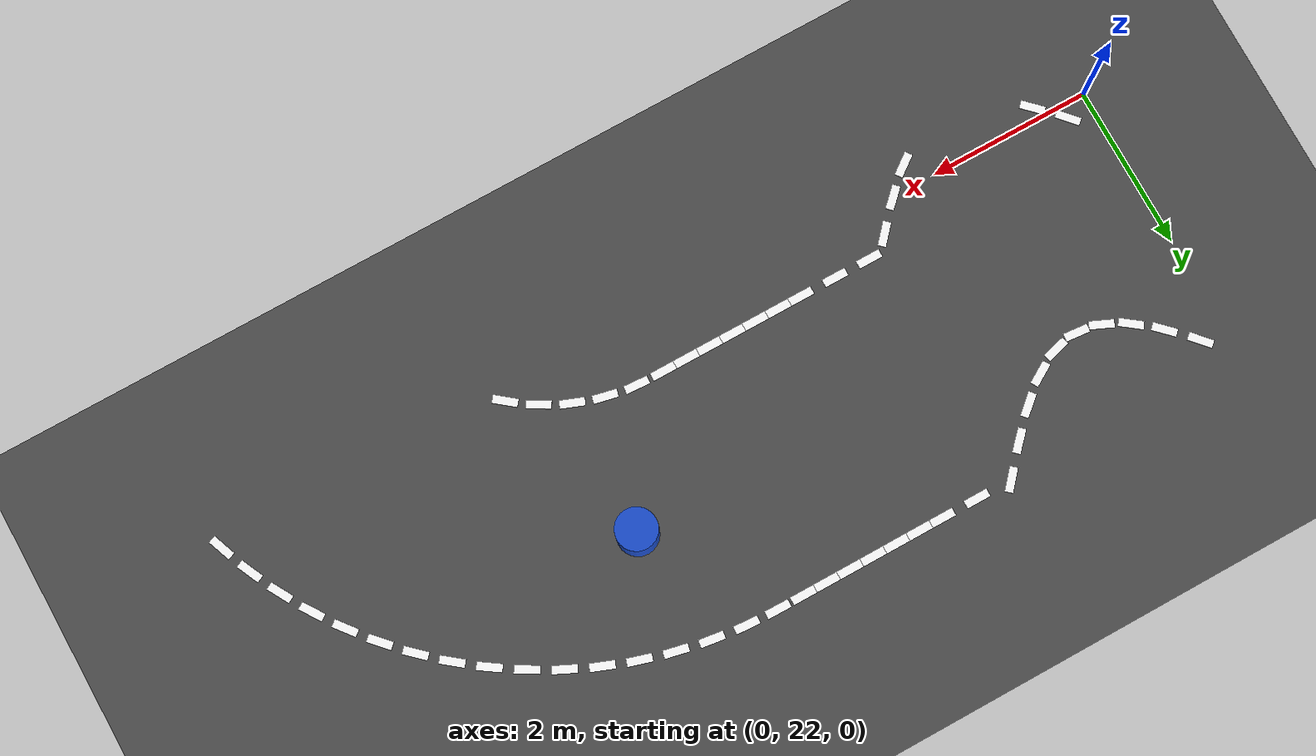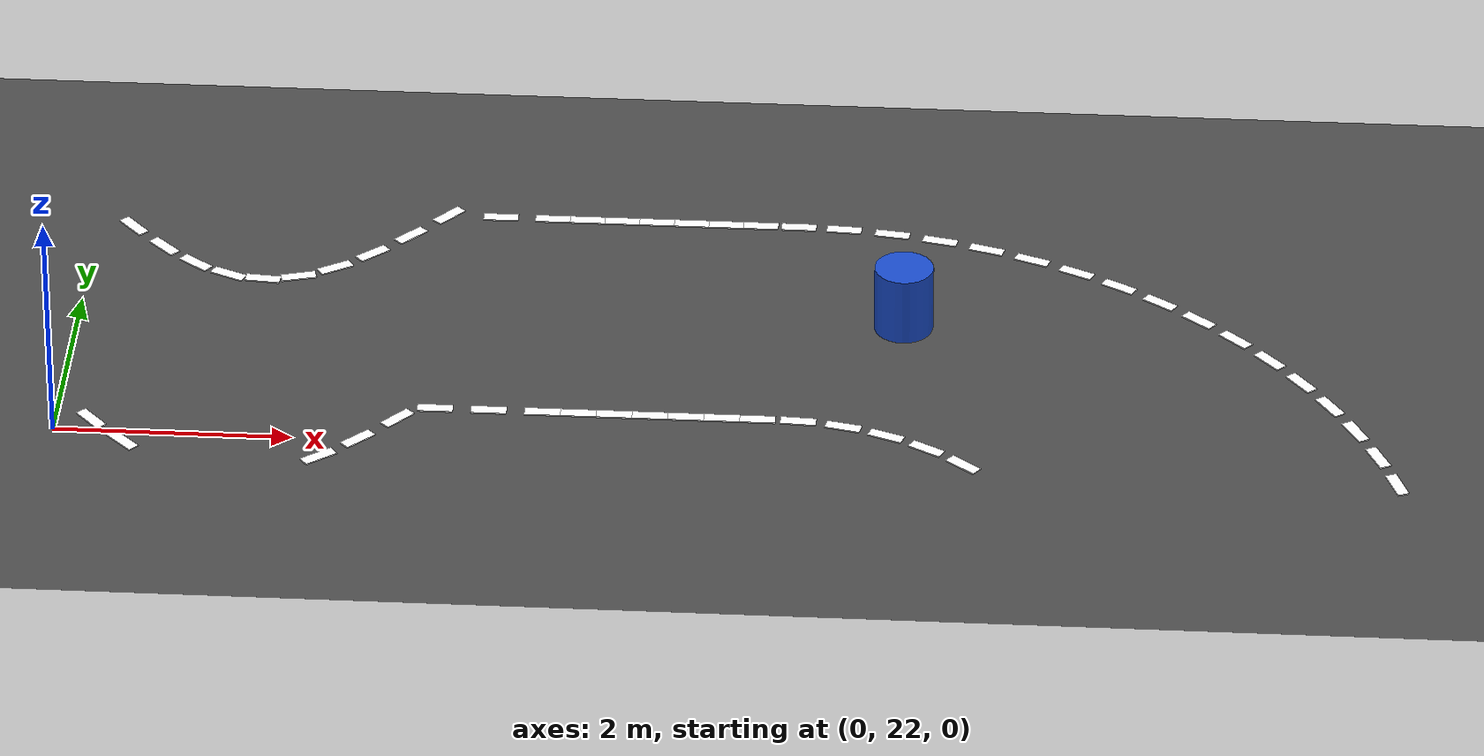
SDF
<sdf version="1.8">
 <world name="igvc_autonav">
  <model name="ground_plane">
   <static>true</static>
   <link name="link">
    <collision name="collision">
     <geometry><plane><normal>0 0 1</normal><size>60 60</size></plane></geometry>
     <surface><friction><ode><mu>0.8</mu><mu2>0.8</mu2></ode></friction></surface>
    </collision>
    <visual name="visual">
     <geometry><plane><normal>0 0 1</normal><size>60 60</size></plane></geometry>
     <material>
      <ambient>0.25 0.25 0.25 1</ambient>
      <diffuse>0.3 0.3 0.3 1</diffuse>
      <specular>0.1 0.1 0.1 1</specular>
     </material>
    </visual>
   </link>
  </model>
  <model name="lane_inner_79">
   <static>true</static>
   <pose>7.5906 21.9287 0.01 0 0 2.4711</pose>
   <link name="link">
    <visual name="visual">
     <geometry><box><size>0.3 0.1 0.01</size></box></geometry>
     <material><ambient>1 1 1 1</ambient><diffuse>1 1 1 1</diffuse><emissive>1 1 1 1</emissive></material>
    </visual>
   </link>
  </model>
  <model name="lane_inner_80">
   <static>true</static>
   <pose>7.2775 22.1489 0.01 0 0 2.6244</pose>
   <link name="link">
    <visual name="visual">
     <geometry><box><size>0.3 0.1 0.01</size></box></geometry>
     <material><ambient>1 1 1 1</ambient><diffuse>1 1 1 1</diffuse><emissive>1 1 1 1</emissive></material>
    </visual>
   </link>
  </model>
  <model name="lane_inner_81">
   <static>true</static>
   <pose>6.9345 22.3188 0.01 0 0 2.7776</pose>
   <link name="link">
    <visual name="visual">
     <geometry><box><size>0.3 0.1 0.01</size></box></geometry>
     <material><ambient>1 1 1 1</ambient><diffuse>1 1 1 1</diffuse><emissive>1 1 1 1</emissive></material>
    </visual>
   </link>
  </model>
  <model name="lane_inner_82">
   <static>true</static>
   <pose>6.5696 22.4342 0.01 0 0 2.9309</pose>
   <link name="link">
    <visual name="visual">
     <geometry><box><size>0.3 0.1 0.01</size></box></geometry>
     <material><ambient>1 1 1 1</ambient><diffuse>1 1 1 1</diffuse><emissive>1 1 1 1</emissive></material>
    </visual>
   </link>
  </model>
  <model name="lane_inner_83">
   <static>true</static>
   <pose>6.1914 22.4927 0.01 0 0 3.0841</pose>
   <link name="link">
    <visual name="visual">
     <geometry><box><size>0.3 0.1 0.01</size></box></geometry>
     <material><ambient>1 1 1 1</ambient><diffuse>1 1 1 1</diffuse><emissive>1 1 1 1</emissive></material>
    </visual>
   </link>
  </model>
  <model name="lane_inner_84">
   <static>true</static>
   <pose>5.8500 22.5000 0.01 0 0 3.1416</pose>
   <link name="link">
    <visual name="visual">
     <geometry><box><size>0.3 0.1 0.01</size></box></geometry>
     <material><ambient>1 1 1 1</ambient><diffuse>1 1 1 1</diffuse><emissive>1 1 1 1</emissive></material>
    </visual>
   </link>
  </model>
  <model name="lane_inner_85">
   <static>true</static>
   <pose>5.5500 22.5000 0.01 0 0 3.1416</pose>
   <link name="link">
    <visual name="visual">
     <geometry><box><size>0.3 0.1 0.01</size></box></geometry>
     <material><ambient>1 1 1 1</ambient><diffuse>1 1 1 1</diffuse><emissive>1 1 1 1</emissive></material>
    </visual>
   </link>
  </model>
  <model name="lane_inner_86">
   <static>true</static>
   <pose>5.2500 22.5000 0.01 0 0 3.1416</pose>
   <link name="link">
    <visual name="visual">
     <geometry><box><size>0.3 0.1 0.01</size></box></geometry>
     <material><ambient>1 1 1 1</ambient><diffuse>1 1 1 1</diffuse><emissive>1 1 1 1</emissive></material>
    </visual>
   </link>
  </model>
  <model name="lane_inner_87">
   <static>true</static>
   <pose>4.9500 22.5000 0.01 0 0 3.1416</pose>
   <link name="link">
    <visual name="visual">
     <geometry><box><size>0.3 0.1 0.01</size></box></geometry>
     <material><ambient>1 1 1 1</ambient><diffuse>1 1 1 1</diffuse><emissive>1 1 1 1</emissive></material>
    </visual>
   </link>
  </model>
  <model name="lane_inner_88">
   <static>true</static>
   <pose>4.6500 22.5000 0.01 0 0 3.1416</pose>
   <link name="link">
    <visual name="visual">
     <geometry><box><size>0.3 0.1 0.01</size></box></geometry>
     <material><ambient>1 1 1 1</ambient><diffuse>1 1 1 1</diffuse><emissive>1 1 1 1</emissive></material>
    </visual>
   </link>
  </model>
  <model name="lane_inner_89">
   <static>true</static>
   <pose>4.3500 22.5000 0.01 0 0 3.1416</pose>
   <link name="link">
    <visual name="visual">
     <geometry><box><size>0.3 0.1 0.01</size></box></geometry>
     <material><ambient>1 1 1 1</ambient><diffuse>1 1 1 1</diffuse><emissive>1 1 1 1</emissive></material>
    </visual>
   </link>
  </model>
  <model name="lane_inner_90">
   <static>true</static>
   <pose>4.0500 22.5000 0.01 0 0 3.1416</pose>
   <link name="link">
    <visual name="visual">
     <geometry><box><size>0.3 0.1 0.01</size></box></geometry>
     <material><ambient>1 1 1 1</ambient><diffuse>1 1 1 1</diffuse><emissive>1 1 1 1</emissive></material>
    </visual>
   </link>
  </model>
  <model name="lane_inner_91">
   <static>true</static>
   <pose>3.6000 22.5000 0.01 0 0 3.1416</pose>
   <link name="link">
    <visual name="visual">
     <geometry><box><size>0.3 0.1 0.01</size></box></geometry>
     <material><ambient>1 1 1 1</ambient><diffuse>1 1 1 1</diffuse><emissive>1 1 1 1</emissive></material>
    </visual>
   </link>
  </model>
  <model name="lane_inner_92">
   <static>true</static>
   <pose>3.1500 22.5000 0.01 0 0 -3.1416</pose>
   <link name="link">
    <visual name="visual">
     <geometry><box><size>0.3 0.1 0.01</size></box></geometry>
     <material><ambient>1 1 1 1</ambient><diffuse>1 1 1 1</diffuse><emissive>1 1 1 1</emissive></material>
    </visual>
   </link>
  </model>
  <model name="lane_inner_93">
   <static>true</static>
   <pose>2.8500 22.3279 0.01 0 0 -2.3001</pose>
   <link name="link">
    <visual name="visual">
     <geometry><box><size>0.3 0.1 0.01</size></box></geometry>
     <material><ambient>1 1 1 1</ambient><diffuse>1 1 1 1</diffuse><emissive>1 1 1 1</emissive></material>
    </visual>
   </link>
  </model>
  <model name="lane_inner_94">
   <static>true</static>
   <pose>2.5500 22.0006 0.01 0 0 -2.3657</pose>
   <link name="link">
    <visual name="visual">
     <geometry><box><size>0.3 0.1 0.01</size></box></geometry>
     <material><ambient>1 1 1 1</ambient><diffuse>1 1 1 1</diffuse><emissive>1 1 1 1</emissive></material>
    </visual>
   </link>
  </model>
  <model name="lane_inner_95">
   <static>true</static>
   <pose>2.2500 21.7222 0.01 0 0 -2.4998</pose>
   <link name="link">
    <visual name="visual">
     <geometry><box><size>0.3 0.1 0.01</size></box></geometry>
     <material><ambient>1 1 1 1</ambient><diffuse>1 1 1 1</diffuse><emissive>1 1 1 1</emissive></material>
    </visual>
   </link>
  </model>
  <model name="lane_inner_100">
   <static>true</static>
   <pose>0.6000 21.8534 0.01 0 0 2.3657</pose>
   <link name="link">
    <visual name="visual">
     <geometry><box><size>0.3 0.1 0.01</size></box></geometry>
     <material><ambient>1 1 1 1</ambient><diffuse>1 1 1 1</diffuse><emissive>1 1 1 1</emissive></material>
    </visual>
   </link>
  </model>
  <model name="lane_inner_101">
   <static>true</static>
   <pose>0.3000 22.1601 0.01 0 0 2.3001</pose>
   <link name="link">
    <visual name="visual">
     <geometry><box><size>0.3 0.1 0.01</size></box></geometry>
     <material><ambient>1 1 1 1</ambient><diffuse>1 1 1 1</diffuse><emissive>1 1 1 1</emissive></material>
    </visual>
   </link>
  </model>
  <model name="lane_outer_89">
   <static>true</static>
   <pose>11.1763 21.8591 0.01 0 0 1.9348</pose>
   <link name="link">
    <visual name="visual">
     <geometry><box><size>0.3 0.1 0.01</size></box></geometry>
     <material><ambient>1 1 1 1</ambient><diffuse>1 1 1 1</diffuse><emissive>1 1 1 1</emissive></material>
    </visual>
   </link>
  </model>
  <model name="lane_outer_90">
   <static>true</static>
   <pose>11.0188 22.2499 0.01 0 0 2.0114</pose>
   <link name="link">
    <visual name="visual">
     <geometry><box><size>0.3 0.1 0.01</size></box></geometry>
     <material><ambient>1 1 1 1</ambient><diffuse>1 1 1 1</diffuse><emissive>1 1 1 1</emissive></material>
    </visual>
   </link>
  </model>
  <model name="lane_outer_91">
   <static>true</static>
   <pose>10.8318 22.6275 0.01 0 0 2.0880</pose>
   <link name="link">
    <visual name="visual">
     <geometry><box><size>0.3 0.1 0.01</size></box></geometry>
     <material><ambient>1 1 1 1</ambient><diffuse>1 1 1 1</diffuse><emissive>1 1 1 1</emissive></material>
    </visual>
   </link>
  </model>
  <model name="lane_outer_92">
   <static>true</static>
   <pose>10.6165 22.9896 0.01 0 0 2.1646</pose>
   <link name="link">
    <visual name="visual">
     <geometry><box><size>0.3 0.1 0.01</size></box></geometry>
     <material><ambient>1 1 1 1</ambient><diffuse>1 1 1 1</diffuse><emissive>1 1 1 1</emissive></material>
    </visual>
   </link>
  </model>
  <model name="lane_outer_93">
   <static>true</static>
   <pose>10.3741 23.3342 0.01 0 0 2.2413</pose>
   <link name="link">
    <visual name="visual">
     <geometry><box><size>0.3 0.1 0.01</size></box></geometry>
     <material><ambient>1 1 1 1</ambient><diffuse>1 1 1 1</diffuse><emissive>1 1 1 1</emissive></material>
    </visual>
   </link>
  </model>
  <model name="lane_outer_94">
   <static>true</static>
   <pose>10.1060 23.6593 0.01 0 0 2.3179</pose>
   <link name="link">
    <visual name="visual">
     <geometry><box><size>0.3 0.1 0.01</size></box></geometry>
     <material><ambient>1 1 1 1</ambient><diffuse>1 1 1 1</diffuse><emissive>1 1 1 1</emissive></material>
    </visual>
   </link>
  </model>
  <model name="lane_outer_95">
   <static>true</static>
   <pose>9.8139 23.9629 0.01 0 0 2.3945</pose>
   <link name="link">
    <visual name="visual">
     <geometry><box><size>0.3 0.1 0.01</size></box></geometry>
     <material><ambient>1 1 1 1</ambient><diffuse>1 1 1 1</diffuse><emissive>1 1 1 1</emissive></material>
    </visual>
   </link>
  </model>
  <model name="lane_outer_96">
   <static>true</static>
   <pose>9.4993 24.2432 0.01 0 0 2.4711</pose>
   <link name="link">
    <visual name="visual">
     <geometry><box><size>0.3 0.1 0.01</size></box></geometry>
     <material><ambient>1 1 1 1</ambient><diffuse>1 1 1 1</diffuse><emissive>1 1 1 1</emissive></material>
    </visual>
   </link>
  </model>
  <model name="lane_outer_97">
   <static>true</static>
   <pose>9.1643 24.4986 0.01 0 0 2.5478</pose>
   <link name="link">
    <visual name="visual">
     <geometry><box><size>0.3 0.1 0.01</size></box></geometry>
     <material><ambient>1 1 1 1</ambient><diffuse>1 1 1 1</diffuse><emissive>1 1 1 1</emissive></material>
    </visual>
   </link>
  </model>
  <model name="lane_outer_98">
   <static>true</static>
   <pose>8.8106 24.7276 0.01 0 0 2.6244</pose>
   <link name="link">
    <visual name="visual">
     <geometry><box><size>0.3 0.1 0.01</size></box></geometry>
     <material><ambient>1 1 1 1</ambient><diffuse>1 1 1 1</diffuse><emissive>1 1 1 1</emissive></material>
    </visual>
   </link>
  </model>
  <model name="lane_outer_99">
   <static>true</static>
   <pose>8.4405 24.9289 0.01 0 0 2.7010</pose>
   <link name="link">
    <visual name="visual">
     <geometry><box><size>0.3 0.1 0.01</size></box></geometry>
     <material><ambient>1 1 1 1</ambient><diffuse>1 1 1 1</diffuse><emissive>1 1 1 1</emissive></material>
    </visual>
   </link>
  </model>
  <model name="lane_outer_100">
   <static>true</static>
   <pose>8.0560 25.1013 0.01 0 0 2.7776</pose>
   <link name="link">
    <visual name="visual">
     <geometry><box><size>0.3 0.1 0.01</size></box></geometry>
     <material><ambient>1 1 1 1</ambient><diffuse>1 1 1 1</diffuse><emissive>1 1 1 1</emissive></material>
    </visual>
   </link>
  </model>
  <model name="lane_outer_101">
   <static>true</static>
   <pose>7.6595 25.2437 0.01 0 0 2.8543</pose>
   <link name="link">
    <visual name="visual">
     <geometry><box><size>0.3 0.1 0.01</size></box></geometry>
     <material><ambient>1 1 1 1</ambient><diffuse>1 1 1 1</diffuse><emissive>1 1 1 1</emissive></material>
    </visual>
   </link>
  </model>
  <model name="lane_outer_102">
   <static>true</static>
   <pose>7.2532 25.3553 0.01 0 0 2.9309</pose>
   <link name="link">
    <visual name="visual">
     <geometry><box><size>0.3 0.1 0.01</size></box></geometry>
     <material><ambient>1 1 1 1</ambient><diffuse>1 1 1 1</diffuse><emissive>1 1 1 1</emissive></material>
    </visual>
   </link>
  </model>
  <model name="lane_outer_103">
   <static>true</static>
   <pose>6.8396 25.4355 0.01 0 0 3.0075</pose>
   <link name="link">
    <visual name="visual">
     <geometry><box><size>0.3 0.1 0.01</size></box></geometry>
     <material><ambient>1 1 1 1</ambient><diffuse>1 1 1 1</diffuse><emissive>1 1 1 1</emissive></material>
    </visual>
   </link>
  </model>
  <model name="lane_outer_104">
   <static>true</static>
   <pose>6.4210 25.4839 0.01 0 0 3.0841</pose>
   <link name="link">
    <visual name="visual">
     <geometry><box><size>0.3 0.1 0.01</size></box></geometry>
     <material><ambient>1 1 1 1</ambient><diffuse>1 1 1 1</diffuse><emissive>1 1 1 1</emissive></material>
    </visual>
   </link>
  </model>
  <model name="lane_outer_105">
   <static>true</static>
   <pose>6.0287 25.4997 0.01 0 0 3.1320</pose>
   <link name="link">
    <visual name="visual">
     <geometry><box><size>0.3 0.1 0.01</size></box></geometry>
     <material><ambient>1 1 1 1</ambient><diffuse>1 1 1 1</diffuse><emissive>1 1 1 1</emissive></material>
    </visual>
   </link>
  </model>
  <model name="lane_outer_106">
   <static>true</static>
   <pose>5.7000 25.5000 0.01 0 0 3.1416</pose>
   <link name="link">
    <visual name="visual">
     <geometry><box><size>0.3 0.1 0.01</size></box></geometry>
     <material><ambient>1 1 1 1</ambient><diffuse>1 1 1 1</diffuse><emissive>1 1 1 1</emissive></material>
    </visual>
   </link>
  </model>
  <model name="lane_outer_107">
   <static>true</static>
   <pose>5.4000 25.5000 0.01 0 0 3.1416</pose>
   <link name="link">
    <visual name="visual">
     <geometry><box><size>0.3 0.1 0.01</size></box></geometry>
     <material><ambient>1 1 1 1</ambient><diffuse>1 1 1 1</diffuse><emissive>1 1 1 1</emissive></material>
    </visual>
   </link>
  </model>
  <model name="lane_outer_108">
   <static>true</static>
   <pose>5.1000 25.5000 0.01 0 0 3.1416</pose>
   <link name="link">
    <visual name="visual">
     <geometry><box><size>0.3 0.1 0.01</size></box></geometry>
     <material><ambient>1 1 1 1</ambient><diffuse>1 1 1 1</diffuse><emissive>1 1 1 1</emissive></material>
    </visual>
   </link>
  </model>
  <model name="lane_outer_109">
   <static>true</static>
   <pose>4.8000 25.5000 0.01 0 0 3.1416</pose>
   <link name="link">
    <visual name="visual">
     <geometry><box><size>0.3 0.1 0.01</size></box></geometry>
     <material><ambient>1 1 1 1</ambient><diffuse>1 1 1 1</diffuse><emissive>1 1 1 1</emissive></material>
    </visual>
   </link>
  </model>
  <model name="lane_outer_110">
   <static>true</static>
   <pose>4.5000 25.5000 0.01 0 0 3.1416</pose>
   <link name="link">
    <visual name="visual">
     <geometry><box><size>0.3 0.1 0.01</size></box></geometry>
     <material><ambient>1 1 1 1</ambient><diffuse>1 1 1 1</diffuse><emissive>1 1 1 1</emissive></material>
    </visual>
   </link>
  </model>
  <model name="lane_outer_111">
   <static>true</static>
   <pose>4.2000 25.5000 0.01 0 0 3.1416</pose>
   <link name="link">
    <visual name="visual">
     <geometry><box><size>0.3 0.1 0.01</size></box></geometry>
     <material><ambient>1 1 1 1</ambient><diffuse>1 1 1 1</diffuse><emissive>1 1 1 1</emissive></material>
    </visual>
   </link>
  </model>
  <model name="lane_outer_112">
   <static>true</static>
   <pose>3.9000 25.5000 0.01 0 0 3.1416</pose>
   <link name="link">
    <visual name="visual">
     <geometry><box><size>0.3 0.1 0.01</size></box></geometry>
     <material><ambient>1 1 1 1</ambient><diffuse>1 1 1 1</diffuse><emissive>1 1 1 1</emissive></material>
    </visual>
   </link>
  </model>
  <model name="lane_outer_113">
   <static>true</static>
   <pose>3.4500 25.5000 0.01 0 0 3.1416</pose>
   <link name="link">
    <visual name="visual">
     <geometry><box><size>0.3 0.1 0.01</size></box></geometry>
     <material><ambient>1 1 1 1</ambient><diffuse>1 1 1 1</diffuse><emissive>1 1 1 1</emissive></material>
    </visual>
   </link>
  </model>
  <model name="lane_outer_114">
   <static>true</static>
   <pose>3.0000 25.5000 0.01 0 0 -2.2878</pose>
   <link name="link">
    <visual name="visual">
     <geometry><box><size>0.3 0.1 0.01</size></box></geometry>
     <material><ambient>1 1 1 1</ambient><diffuse>1 1 1 1</diffuse><emissive>1 1 1 1</emissive></material>
    </visual>
   </link>
  </model>
  <model name="lane_outer_115">
   <static>true</static>
   <pose>2.7000 25.1601 0.01 0 0 -2.3256</pose>
   <link name="link">
    <visual name="visual">
     <geometry><box><size>0.3 0.1 0.01</size></box></geometry>
     <material><ambient>1 1 1 1</ambient><diffuse>1 1 1 1</diffuse><emissive>1 1 1 1</emissive></material>
    </visual>
   </link>
  </model>
  <model name="lane_outer_116">
   <static>true</static>
   <pose>2.4000 24.8534 0.01 0 0 -2.4227</pose>
   <link name="link">
    <visual name="visual">
     <geometry><box><size>0.3 0.1 0.01</size></box></geometry>
     <material><ambient>1 1 1 1</ambient><diffuse>1 1 1 1</diffuse><emissive>1 1 1 1</emissive></material>
    </visual>
   </link>
  </model>
  <model name="lane_outer_117">
   <static>true</static>
   <pose>2.1000 24.6101 0.01 0 0 -2.6002</pose>
   <link name="link">
    <visual name="visual">
     <geometry><box><size>0.3 0.1 0.01</size></box></geometry>
     <material><ambient>1 1 1 1</ambient><diffuse>1 1 1 1</diffuse><emissive>1 1 1 1</emissive></material>
    </visual>
   </link>
  </model>
  <model name="lane_outer_118">
   <static>true</static>
   <pose>1.8000 24.4538 0.01 0 0 -2.8792</pose>
   <link name="link">
    <visual name="visual">
     <geometry><box><size>0.3 0.1 0.01</size></box></geometry>
     <material><ambient>1 1 1 1</ambient><diffuse>1 1 1 1</diffuse><emissive>1 1 1 1</emissive></material>
    </visual>
   </link>
  </model>
  <model name="lane_outer_119">
   <static>true</static>
   <pose>1.5000 24.4000 0.01 0 0 3.0516</pose>
   <link name="link">
    <visual name="visual">
     <geometry><box><size>0.3 0.1 0.01</size></box></geometry>
     <material><ambient>1 1 1 1</ambient><diffuse>1 1 1 1</diffuse><emissive>1 1 1 1</emissive></material>
    </visual>
   </link>
  </model>
  <model name="lane_outer_120">
   <static>true</static>
   <pose>1.2000 24.4538 0.01 0 0 2.7268</pose>
   <link name="link">
    <visual name="visual">
     <geometry><box><size>0.3 0.1 0.01</size></box></geometry>
     <material><ambient>1 1 1 1</ambient><diffuse>1 1 1 1</diffuse><emissive>1 1 1 1</emissive></material>
    </visual>
   </link>
  </model>
  <model name="lane_outer_121">
   <static>true</static>
   <pose>0.9000 24.6101 0.01 0 0 2.4998</pose>
   <link name="link">
    <visual name="visual">
     <geometry><box><size>0.3 0.1 0.01</size></box></geometry>
     <material><ambient>1 1 1 1</ambient><diffuse>1 1 1 1</diffuse><emissive>1 1 1 1</emissive></material>
    </visual>
   </link>
  </model>
  <model name="lane_outer_122">
   <static>true</static>
   <pose>0.6000 24.8534 0.01 0 0 2.3657</pose>
   <link name="link">
    <visual name="visual">
     <geometry><box><size>0.3 0.1 0.01</size></box></geometry>
     <material><ambient>1 1 1 1</ambient><diffuse>1 1 1 1</diffuse><emissive>1 1 1 1</emissive></material>
    </visual>
   </link>
  </model>
  <model name="lane_outer_123">
   <static>true</static>
   <pose>0.3000 25.1601 0.01 0 0 2.3001</pose>
   <link name="link">
    <visual name="visual">
     <geometry><box><size>0.3 0.1 0.01</size></box></geometry>
     <material><ambient>1 1 1 1</ambient><diffuse>1 1 1 1</diffuse><emissive>1 1 1 1</emissive></material>
    </visual>
   </link>
  </model>
  <include><uri>model://barrel</uri><name>barrel_2</name><pose>7 24 0 0 0 0</pose></include>
 </world>
</sdf>
